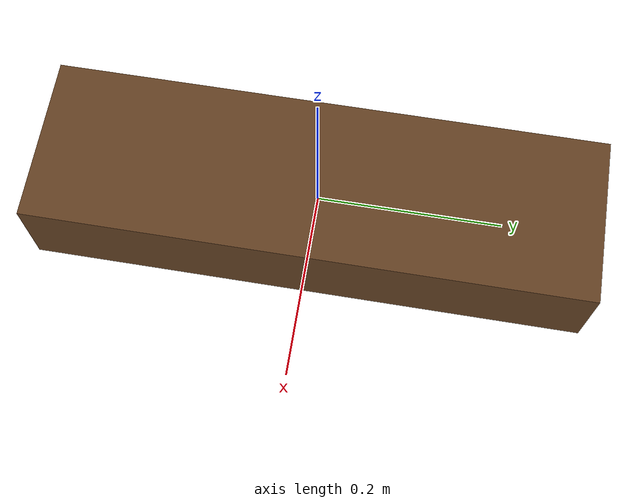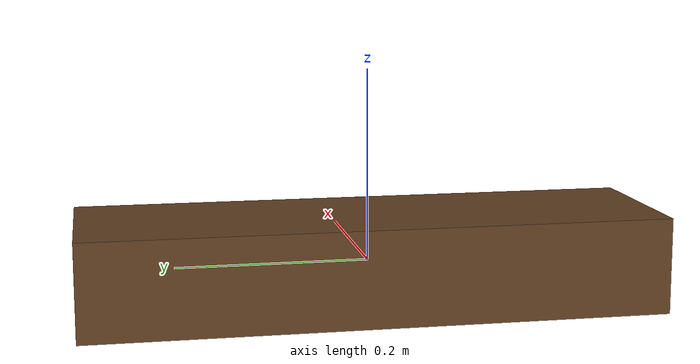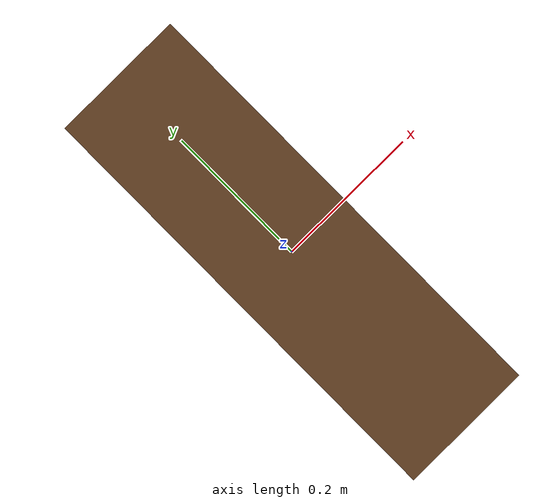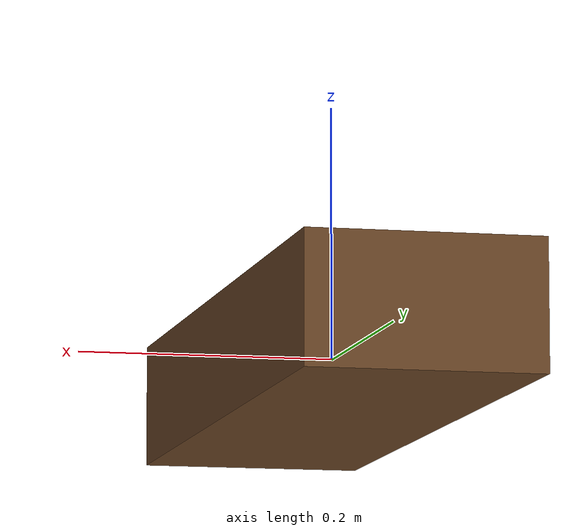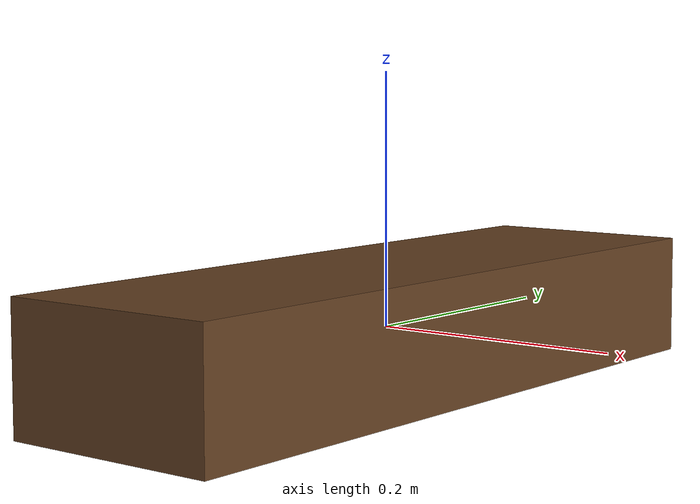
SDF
<?xml version="1.0" ?>
<sdf version="1.9">
  <model name="table">
    <static>true</static>
    <link name="link">
      <collision name="collision">
        <geometry><box><size>0.18 0.60 0.10</size></box></geometry>
      </collision>
      <visual name="visual">
        <geometry><box><size>0.18 0.60 0.10</size></box></geometry>
        <material><ambient>0.35 0.22 0.12 1</ambient><diffuse>0.4 0.26 0.14 1</diffuse><specular>0.1 0.1 0.1 1</specular></material>
      </visual>
    </link>
  </model>
</sdf>
